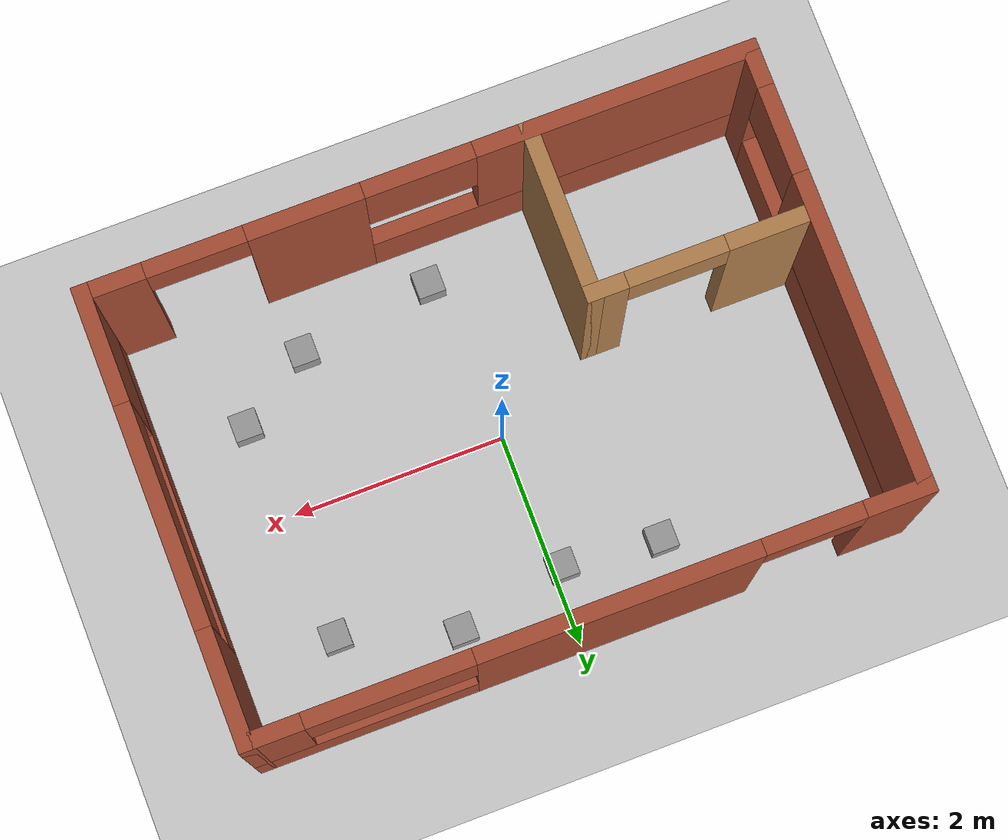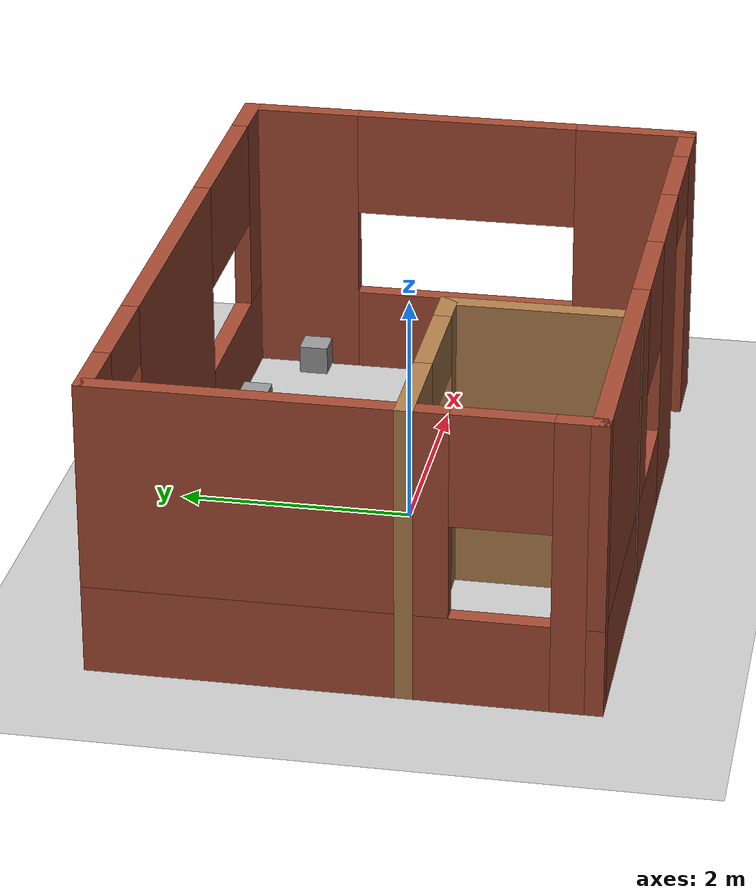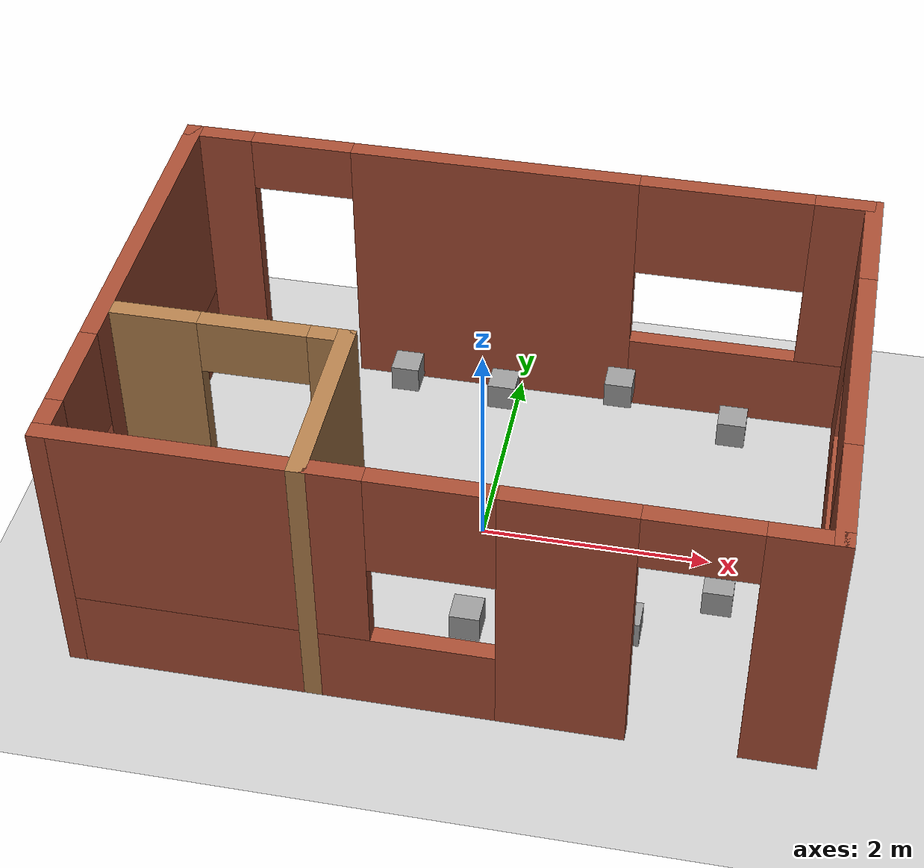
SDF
<sdf version="1.7">
 <world name="default">
  <light name="sun" type="directional">
   <pose>0 0 10 0 -0 0</pose>
   <diffuse>0.8 0.8 0.8 1</diffuse>
   <specular>0.2 0.2 0.2 1</specular>
   <attenuation>
    <range>1000</range>
    <constant>0.9</constant>
    <linear>0.01</linear>
    <quadratic>0.001</quadratic>
   </attenuation>
   <direction>-0.5 0.1 -0.9</direction>
   <spot><inner_angle>0</inner_angle><outer_angle>0</outer_angle><falloff>0</falloff></spot>
  </light>
  <model name="ground_plane">
   <static>1</static>
   <link name="link">
    <collision name="collision">
     <geometry><plane><normal>0 0 1</normal><size>100 100</size></plane></geometry>
     <surface>
      <contact><collide_bitmask>65535</collide_bitmask></contact>
      <friction><ode><mu>100</mu><mu2>50</mu2></ode></friction>
     </surface>
    </collision>
    <visual name="visual">
     <cast_shadows>0</cast_shadows>
     <geometry><plane><normal>0 0 1</normal><size>100 100</size></plane></geometry>
     <material>
      <script><uri>file://media/materials/scripts/gazebo.material</uri><name>Gazebo/Grey</name></script>
     </material>
    </visual>
   </link>
  </model>
  <gravity>0 0 -9.8</gravity>
  <magnetic_field>6e-06 2.3e-05 -4.2e-05</magnetic_field>
  <atmosphere type="adiabatic"/>
  <physics type="ode">
   <max_step_size>0.001</max_step_size>
   <real_time_factor>1</real_time_factor>
   <real_time_update_rate>1000</real_time_update_rate>
  </physics>
  <scene><ambient>0.4 0.4 0.4 1</ambient><background>0.7 0.7 0.7 1</background><shadows>1</shadows></scene>
  <audio><device>default</device></audio>
  <spherical_coordinates>
   <surface_model>EARTH_WGS84</surface_model>
   <latitude_deg>0</latitude_deg>
   <longitude_deg>0</longitude_deg>
   <elevation>0</elevation>
   <heading_deg>0</heading_deg>
  </spherical_coordinates>
  <model name="scara_world">
   <link name="Wall_0">
    <pose>0 2 0 0 -0 0</pose>
    <visual name="Wall_0_Visual_0">
     <pose>-2.7625 0 1.25 0 -0 0</pose>
     <geometry><box><size>0.625 0.15 2.5</size></box></geometry>
     <material>
      <script><uri>file://media/materials/scripts/gazebo.material</uri><name>Gazebo/Bricks</name></script>
      <ambient>1 1 1 1</ambient>
     </material>
     <meta><layer>0</layer></meta>
    </visual>
    <collision name="Wall_0_Collision_0">
     <geometry><box><size>0.625 0.15 2.5</size></box></geometry>
     <pose>-2.7625 0 1.25 0 -0 0</pose>
    </collision>
    <visual name="Wall_0_Visual_1">
     <pose>-0.275 0 1.25 0 -0 0</pose>
     <geometry><box><size>2.55 0.15 2.5</size></box></geometry>
     <material>
      <script><uri>file://media/materials/scripts/gazebo.material</uri><name>Gazebo/Bricks</name></script>
      <ambient>1 1 1 1</ambient>
     </material>
     <meta><layer>0</layer></meta>
    </visual>
    <collision name="Wall_0_Collision_1">
     <geometry><box><size>2.55 0.15 2.5</size></box></geometry>
     <pose>-0.275 0 1.25 0 -0 0</pose>
    </collision>
    <visual name="Wall_0_Visual_2">
     <pose>2.0375 0 0.375 0 -0 0</pose>
     <geometry><box><size>2.075 0.15 0.75</size></box></geometry>
     <material>
      <script><uri>file://media/materials/scripts/gazebo.material</uri><name>Gazebo/Bricks</name></script>
      <ambient>1 1 1 1</ambient>
     </material>
     <meta><layer>0</layer></meta>
    </visual>
    <collision name="Wall_0_Collision_2">
     <geometry><box><size>2.075 0.15 0.75</size></box></geometry>
     <pose>2.0375 0 0.375 0 -0 0</pose>
    </collision>
    <visual name="Wall_0_Visual_3">
     <pose>2.7875 0 1.625 0 -0 0</pose>
     <geometry><box><size>0.575 0.15 1.75</size></box></geometry>
     <material>
      <script><uri>file://media/materials/scripts/gazebo.material</uri><name>Gazebo/Bricks</name></script>
      <ambient>1 1 1 1</ambient>
     </material>
     <meta><layer>0</layer></meta>
    </visual>
    <collision name="Wall_0_Collision_3">
     <geometry><box><size>0.575 0.15 1.75</size></box></geometry>
     <pose>2.7875 0 1.625 0 -0 0</pose>
    </collision>
    <visual name="Wall_0_Visual_4">
     <pose>1.75 0 2.025 0 -0 0</pose>
     <geometry><box><size>1.5 0.15 0.95</size></box></geometry>
     <material>
      <script><uri>file://media/materials/scripts/gazebo.material</uri><name>Gazebo/Bricks</name></script>
      <ambient>1 1 1 1</ambient>
     </material>
     <meta><layer>0</layer></meta>
    </visual>
    <collision name="Wall_0_Collision_4">
     <geometry><box><size>1.5 0.15 0.95</size></box></geometry>
     <pose>1.75 0 2.025 0 -0 0</pose>
    </collision>
    <visual name="Wall_0_Visual_5">
     <pose>-2 0 2.25 0 -0 0</pose>
     <geometry><box><size>0.9 0.15 0.5</size></box></geometry>
     <material>
      <script><uri>file://media/materials/scripts/gazebo.material</uri><name>Gazebo/Bricks</name></script>
      <ambient>1 1 1 1</ambient>
     </material>
     <meta><layer>0</layer></meta>
    </visual>
    <collision name="Wall_0_Collision_5">
     <geometry><box><size>0.9 0.15 0.5</size></box></geometry>
     <pose>-2 0 2.25 0 -0 0</pose>
    </collision>
   </link>
   <link name="Wall_1">
    <pose>3 0 0 0 -0 -1.5708</pose>
    <visual name="Wall_1_Visual_0">
     <pose>-1.5375 0 1.25 0 -0 0</pose>
     <geometry><box><size>1.075 0.15 2.5</size></box></geometry>
     <material>
      <script><uri>file://media/materials/scripts/gazebo.material</uri><name>Gazebo/Bricks</name></script>
      <ambient>1 1 1 1</ambient>
     </material>
     <meta><layer>0</layer></meta>
    </visual>
    <collision name="Wall_1_Collision_0">
     <geometry><box><size>1.075 0.15 2.5</size></box></geometry>
     <pose>-1.5375 0 1.25 0 -0 0</pose>
    </collision>
    <visual name="Wall_1_Visual_1">
     <pose>0.5375 0 0.375 0 -0 0</pose>
     <geometry><box><size>3.075 0.15 0.75</size></box></geometry>
     <material>
      <script><uri>file://media/materials/scripts/gazebo.material</uri><name>Gazebo/Bricks</name></script>
      <ambient>1 1 1 1</ambient>
     </material>
     <meta><layer>0</layer></meta>
    </visual>
    <collision name="Wall_1_Collision_1">
     <geometry><box><size>3.075 0.15 0.75</size></box></geometry>
     <pose>0.5375 0 0.375 0 -0 0</pose>
    </collision>
    <visual name="Wall_1_Visual_2">
     <pose>1.5375 0 1.625 0 -0 0</pose>
     <geometry><box><size>1.075 0.15 1.75</size></box></geometry>
     <material>
      <script><uri>file://media/materials/scripts/gazebo.material</uri><name>Gazebo/Bricks</name></script>
      <ambient>1 1 1 1</ambient>
     </material>
     <meta><layer>0</layer></meta>
    </visual>
    <collision name="Wall_1_Collision_2">
     <geometry><box><size>1.075 0.15 1.75</size></box></geometry>
     <pose>1.5375 0 1.625 0 -0 0</pose>
    </collision>
    <visual name="Wall_1_Visual_3">
     <pose>0 0 2.025 0 -0 0</pose>
     <geometry><box><size>2 0.15 0.95</size></box></geometry>
     <material>
      <script><uri>file://media/materials/scripts/gazebo.material</uri><name>Gazebo/Bricks</name></script>
      <ambient>1 1 1 1</ambient>
     </material>
     <meta><layer>0</layer></meta>
    </visual>
    <collision name="Wall_1_Collision_3">
     <geometry><box><size>2 0.15 0.95</size></box></geometry>
     <pose>0 0 2.025 0 -0 0</pose>
    </collision>
   </link>
   <link name="Wall_2">
    <pose>0 -2 0 0 -0 3.14159</pose>
    <visual name="Wall_2_Visual_0">
     <pose>-2.7625 0 1.25 0 -0 0</pose>
     <geometry><box><size>0.625 0.15 2.5</size></box></geometry>
     <material>
      <script><uri>file://media/materials/scripts/gazebo.material</uri><name>Gazebo/Bricks</name></script>
      <ambient>1 1 1 1</ambient>
     </material>
     <meta><layer>0</layer></meta>
    </visual>
    <collision name="Wall_2_Collision_0">
     <geometry><box><size>0.625 0.15 2.5</size></box></geometry>
     <pose>-2.7625 0 1.25 0 -0 0</pose>
    </collision>
    <visual name="Wall_2_Visual_1">
     <pose>-1.025 0 1.25 0 -0 0</pose>
     <geometry><box><size>1.05 0.15 2.5</size></box></geometry>
     <material>
      <script><uri>file://media/materials/scripts/gazebo.material</uri><name>Gazebo/Bricks</name></script>
      <ambient>1 1 1 1</ambient>
     </material>
     <meta><layer>0</layer></meta>
    </visual>
    <collision name="Wall_2_Collision_1">
     <geometry><box><size>1.05 0.15 2.5</size></box></geometry>
     <pose>-1.025 0 1.25 0 -0 0</pose>
    </collision>
    <visual name="Wall_2_Visual_2">
     <pose>1.2875 0 0.375 0 -0 0</pose>
     <geometry><box><size>3.575 0.15 0.75</size></box></geometry>
     <material>
      <script><uri>file://media/materials/scripts/gazebo.material</uri><name>Gazebo/Bricks</name></script>
      <ambient>1 1 1 1</ambient>
     </material>
     <meta><layer>0</layer></meta>
    </visual>
    <collision name="Wall_2_Collision_2">
     <geometry><box><size>3.575 0.15 0.75</size></box></geometry>
     <pose>1.2875 0 0.375 0 -0 0</pose>
    </collision>
    <visual name="Wall_2_Visual_3">
     <pose>1.7875 0 1.625 0 -0 0</pose>
     <geometry><box><size>2.575 0.15 1.75</size></box></geometry>
     <material>
      <script><uri>file://media/materials/scripts/gazebo.material</uri><name>Gazebo/Bricks</name></script>
      <ambient>1 1 1 1</ambient>
     </material>
     <meta><layer>0</layer></meta>
    </visual>
    <collision name="Wall_2_Collision_3">
     <geometry><box><size>2.575 0.15 1.75</size></box></geometry>
     <pose>1.7875 0 1.625 0 -0 0</pose>
    </collision>
    <visual name="Wall_2_Visual_4">
     <pose>0 0 2.025 0 -0 0</pose>
     <geometry><box><size>1 0.15 0.95</size></box></geometry>
     <material>
      <script><uri>file://media/materials/scripts/gazebo.material</uri><name>Gazebo/Bricks</name></script>
      <ambient>1 1 1 1</ambient>
     </material>
     <meta><layer>0</layer></meta>
    </visual>
    <collision name="Wall_2_Collision_4">
     <geometry><box><size>1 0.15 0.95</size></box></geometry>
     <pose>0 0 2.025 0 -0 0</pose>
    </collision>
    <visual name="Wall_2_Visual_5">
     <pose>-2 0 2.25 0 -0 0</pose>
     <geometry><box><size>0.9 0.15 0.5</size></box></geometry>
     <material>
      <script><uri>file://media/materials/scripts/gazebo.material</uri><name>Gazebo/Bricks</name></script>
      <ambient>1 1 1 1</ambient>
     </material>
     <meta><layer>0</layer></meta>
    </visual>
    <collision name="Wall_2_Collision_5">
     <geometry><box><size>0.9 0.15 0.5</size></box></geometry>
     <pose>-2 0 2.25 0 -0 0</pose>
    </collision>
   </link>
   <link name="Wall_3">
    <pose>-3 0 0 0 -0 1.5708</pose>
    <visual name="Wall_3_Visual_0">
     <pose>-1.8625 0 1.25 0 -0 0</pose>
     <geometry><box><size>0.425 0.15 2.5</size></box></geometry>
     <material>
      <script><uri>file://media/materials/scripts/gazebo.material</uri><name>Gazebo/Bricks</name></script>
      <ambient>1 1 1 1</ambient>
     </material>
     <meta><layer>0</layer></meta>
    </visual>
    <collision name="Wall_3_Collision_0">
     <geometry><box><size>0.425 0.15 2.5</size></box></geometry>
     <pose>-1.8625 0 1.25 0 -0 0</pose>
    </collision>
    <visual name="Wall_3_Visual_1">
     <pose>0.2125 0 0.375 0 -0 0</pose>
     <geometry><box><size>3.725 0.15 0.75</size></box></geometry>
     <material>
      <script><uri>file://media/materials/scripts/gazebo.material</uri><name>Gazebo/Bricks</name></script>
      <ambient>1 1 1 1</ambient>
     </material>
     <meta><layer>0</layer></meta>
    </visual>
    <collision name="Wall_3_Collision_1">
     <geometry><box><size>3.725 0.15 0.75</size></box></geometry>
     <pose>0.2125 0 0.375 0 -0 0</pose>
    </collision>
    <visual name="Wall_3_Visual_2">
     <pose>0.6125 0 1.625 0 -0 0</pose>
     <geometry><box><size>2.925 0.15 1.75</size></box></geometry>
     <material>
      <script><uri>file://media/materials/scripts/gazebo.material</uri><name>Gazebo/Bricks</name></script>
      <ambient>1 1 1 1</ambient>
     </material>
     <meta><layer>0</layer></meta>
    </visual>
    <collision name="Wall_3_Collision_2">
     <geometry><box><size>2.925 0.15 1.75</size></box></geometry>
     <pose>0.6125 0 1.625 0 -0 0</pose>
    </collision>
    <visual name="Wall_3_Visual_3">
     <pose>-1.25 0 2.025 0 -0 0</pose>
     <geometry><box><size>0.8 0.15 0.95</size></box></geometry>
     <material>
      <script><uri>file://media/materials/scripts/gazebo.material</uri><name>Gazebo/Bricks</name></script>
      <ambient>1 1 1 1</ambient>
     </material>
     <meta><layer>0</layer></meta>
    </visual>
    <collision name="Wall_3_Collision_3">
     <geometry><box><size>0.8 0.15 0.95</size></box></geometry>
     <pose>-1.25 0 2.025 0 -0 0</pose>
    </collision>
   </link>
   <link name="Wall_5">
    <pose>-2 -0.5 0 0 -0 0</pose>
    <visual name="Wall_5_Visual_0">
     <pose>-0.6375 0 1.25 0 -0 0</pose>
     <geometry><box><size>0.875 0.15 2.5</size></box></geometry>
     <material>
      <script><uri>file://media/materials/scripts/gazebo.material</uri><name>Gazebo/Wood</name></script>
      <ambient>1 1 1 1</ambient>
     </material>
     <meta><layer>0</layer></meta>
    </visual>
    <collision name="Wall_5_Collision_0">
     <geometry><box><size>0.875 0.15 2.5</size></box></geometry>
     <pose>-0.6375 0 1.25 0 -0 0</pose>
    </collision>
    <visual name="Wall_5_Visual_1">
     <pose>0.8875 0 1.25 0 -0 0</pose>
     <geometry><box><size>0.375 0.15 2.5</size></box></geometry>
     <material>
      <script><uri>file://media/materials/scripts/gazebo.material</uri><name>Gazebo/Wood</name></script>
      <ambient>1 1 1 1</ambient>
     </material>
     <meta><layer>0</layer></meta>
    </visual>
    <collision name="Wall_5_Collision_1">
     <geometry><box><size>0.375 0.15 2.5</size></box></geometry>
     <pose>0.8875 0 1.25 0 -0 0</pose>
    </collision>
    <visual name="Wall_5_Visual_2">
     <pose>0.25 0 2.25 0 -0 0</pose>
     <geometry><box><size>0.9 0.15 0.5</size></box></geometry>
     <material>
      <script><uri>file://media/materials/scripts/gazebo.material</uri><name>Gazebo/Wood</name></script>
      <ambient>1 1 1 1</ambient>
     </material>
     <meta><layer>0</layer></meta>
    </visual>
    <collision name="Wall_5_Collision_2">
     <geometry><box><size>0.9 0.15 0.5</size></box></geometry>
     <pose>0.25 0 2.25 0 -0 0</pose>
    </collision>
   </link>
   <link name="Wall_6">
    <collision name="Wall_6_Collision">
     <geometry><box><size>1.65 0.15 2.5</size></box></geometry>
     <pose>0 0 1.25 0 -0 0</pose>
    </collision>
    <visual name="Wall_6_Visual">
     <pose>0 0 1.25 0 -0 0</pose>
     <geometry><box><size>1.65 0.15 2.5</size></box></geometry>
     <material>
      <script><uri>file://media/materials/scripts/gazebo.material</uri><name>Gazebo/Wood</name></script>
      <ambient>1 1 1 1</ambient>
     </material>
     <meta><layer>0</layer></meta>
    </visual>
    <pose>-1 -1.25 0 0 -0 -1.5708</pose>
   </link>
   <static>1</static>
  </model>
  <model name="unit_box">
   <link name="link">
    <inertial>
     <mass>1</mass>
     <inertia>
      <ixx>0.166667</ixx>
      <ixy>0</ixy>
      <ixz>0</ixz>
      <iyy>0.166667</iyy>
      <iyz>0</iyz>
      <izz>0.166667</izz>
     </inertia>
    </inertial>
    <visual name="visual">
     <geometry><box><size>0.25 0.25 0.25</size></box></geometry>
     <material>
      <script><name>Gazebo/Grey</name><uri>file://media/materials/scripts/gazebo.material</uri></script>
      <shader type="pixel"><normal_map>__default__</normal_map></shader>
      <ambient>0.3 0.3 0.3 1</ambient>
      <diffuse>0.7 0.7 0.7 1</diffuse>
      <specular>0.01 0.01 0.01 1</specular>
      <emissive>0 0 0 1</emissive>
     </material>
    </visual>
    <collision name="collision">
     <geometry><box><size>0.25 0.25 0.25</size></box></geometry>
     <surface>
      <friction>
       <ode><mu>1</mu><mu2>1</mu2><fdir1>0 0 0</fdir1><slip1>0</slip1><slip2>0</slip2></ode>
       <torsional>
        <coefficient>1</coefficient>
        <patch_radius>0</patch_radius>
        <surface_radius>0</surface_radius>
        <use_patch_radius>1</use_patch_radius>
        <ode><slip>0</slip></ode>
       </torsional>
      </friction>
      <bounce><restitution_coefficient>0</restitution_coefficient><threshold>1e+06</threshold></bounce>
      <contact>
       <collide_without_contact>0</collide_without_contact>
       <collide_without_contact_bitmask>1</collide_without_contact_bitmask>
       <collide_bitmask>1</collide_bitmask>
       <ode>
        <soft_cfm>0</soft_cfm>
        <soft_erp>0.2</soft_erp>
        <kp>1e+13</kp>
        <kd>1</kd>
        <max_vel>0.01</max_vel>
        <min_depth>0</min_depth>
       </ode>
       <bullet>
        <split_impulse>1</split_impulse>
        <split_impulse_penetration_threshold>-0.01</split_impulse_penetration_threshold>
        <soft_cfm>0</soft_cfm>
        <soft_erp>0.2</soft_erp>
        <kp>1e+13</kp>
        <kd>1</kd>
       </bullet>
      </contact>
     </surface>
    </collision>
   </link>
   <link name="link_clone">
    <inertial>
     <mass>1</mass>
     <inertia>
      <ixx>0.166667</ixx>
      <ixy>0</ixy>
      <ixz>0</ixz>
      <iyy>0.166667</iyy>
      <iyz>0</iyz>
      <izz>0.166667</izz>
     </inertia>
    </inertial>
    <pose>0.098467 -2.04443 -2e-05 1e-05 -0 0</pose>
    <visual name="visual">
     <geometry><box><size>0.25 0.25 0.25</size></box></geometry>
     <material>
      <script><name>Gazebo/Grey</name><uri>file://media/materials/scripts/gazebo.material</uri></script>
      <shader type="pixel"><normal_map>__default__</normal_map></shader>
      <ambient>0.3 0.3 0.3 1</ambient>
      <diffuse>0.7 0.7 0.7 1</diffuse>
      <specular>0.01 0.01 0.01 1</specular>
      <emissive>0 0 0 1</emissive>
     </material>
    </visual>
    <collision name="collision">
     <geometry><box><size>0.25 0.25 0.25</size></box></geometry>
     <surface>
      <friction>
       <ode><mu>1</mu><mu2>1</mu2><fdir1>0 0 0</fdir1><slip1>0</slip1><slip2>0</slip2></ode>
       <torsional>
        <coefficient>1</coefficient>
        <patch_radius>0</patch_radius>
        <surface_radius>0</surface_radius>
        <use_patch_radius>1</use_patch_radius>
        <ode><slip>0</slip></ode>
       </torsional>
      </friction>
      <bounce><restitution_coefficient>0</restitution_coefficient><threshold>1e+06</threshold></bounce>
      <contact>
       <collide_without_contact>0</collide_without_contact>
       <collide_without_contact_bitmask>1</collide_without_contact_bitmask>
       <collide_bitmask>1</collide_bitmask>
       <ode>
        <soft_cfm>0</soft_cfm>
        <soft_erp>0.2</soft_erp>
        <kp>1e+13</kp>
        <kd>1</kd>
        <max_vel>0.01</max_vel>
        <min_depth>0</min_depth>
       </ode>
       <bullet>
        <split_impulse>1</split_impulse>
        <split_impulse_penetration_threshold>-0.01</split_impulse_penetration_threshold>
        <soft_cfm>0</soft_cfm>
        <soft_erp>0.2</soft_erp>
        <kp>1e+13</kp>
        <kd>1</kd>
       </bullet>
      </contact>
     </surface>
    </collision>
   </link>
   <link name="link_clone_0">
    <inertial>
     <mass>1</mass>
     <inertia>
      <ixx>0.166667</ixx>
      <ixy>0</ixy>
      <ixz>0</ixz>
      <iyy>0.166667</iyy>
      <iyz>0</iyz>
      <izz>0.166667</izz>
     </inertia>
    </inertial>
    <pose>-1.05809 0.335206 3e-06 1e-05 -0 0</pose>
    <visual name="visual">
     <geometry><box><size>0.25 0.25 0.25</size></box></geometry>
     <material>
      <script><name>Gazebo/Grey</name><uri>file://media/materials/scripts/gazebo.material</uri></script>
      <shader type="pixel"><normal_map>__default__</normal_map></shader>
      <ambient>0.3 0.3 0.3 1</ambient>
      <diffuse>0.7 0.7 0.7 1</diffuse>
      <specular>0.01 0.01 0.01 1</specular>
      <emissive>0 0 0 1</emissive>
     </material>
    </visual>
    <collision name="collision">
     <geometry><box><size>0.25 0.25 0.25</size></box></geometry>
     <surface>
      <friction>
       <ode><mu>1</mu><mu2>1</mu2><fdir1>0 0 0</fdir1><slip1>0</slip1><slip2>0</slip2></ode>
       <torsional>
        <coefficient>1</coefficient>
        <patch_radius>0</patch_radius>
        <surface_radius>0</surface_radius>
        <use_patch_radius>1</use_patch_radius>
        <ode><slip>0</slip></ode>
       </torsional>
      </friction>
      <bounce><restitution_coefficient>0</restitution_coefficient><threshold>1e+06</threshold></bounce>
      <contact>
       <collide_without_contact>0</collide_without_contact>
       <collide_without_contact_bitmask>1</collide_without_contact_bitmask>
       <collide_bitmask>1</collide_bitmask>
       <ode>
        <soft_cfm>0</soft_cfm>
        <soft_erp>0.2</soft_erp>
        <kp>1e+13</kp>
        <kd>1</kd>
        <max_vel>0.01</max_vel>
        <min_depth>0</min_depth>
       </ode>
       <bullet>
        <split_impulse>1</split_impulse>
        <split_impulse_penetration_threshold>-0.01</split_impulse_penetration_threshold>
        <soft_cfm>0</soft_cfm>
        <soft_erp>0.2</soft_erp>
        <kp>1e+13</kp>
        <kd>1</kd>
       </bullet>
      </contact>
     </surface>
    </collision>
   </link>
   <link name="link_clone_1">
    <inertial>
     <mass>1</mass>
     <inertia>
      <ixx>0.166667</ixx>
      <ixy>0</ixy>
      <ixz>0</ixz>
      <iyy>0.166667</iyy>
      <iyz>0</iyz>
      <izz>0.166667</izz>
     </inertia>
    </inertial>
    <pose>-2.99875 0.194392 2e-06 1e-05 -0 0</pose>
    <visual name="visual">
     <geometry><box><size>0.25 0.25 0.25</size></box></geometry>
     <material>
      <script><name>Gazebo/Grey</name><uri>file://media/materials/scripts/gazebo.material</uri></script>
      <shader type="pixel"><normal_map>__default__</normal_map></shader>
      <ambient>0.3 0.3 0.3 1</ambient>
      <diffuse>0.7 0.7 0.7 1</diffuse>
      <specular>0.01 0.01 0.01 1</specular>
      <emissive>0 0 0 1</emissive>
     </material>
    </visual>
    <collision name="collision">
     <geometry><box><size>0.25 0.25 0.25</size></box></geometry>
     <surface>
      <friction>
       <ode><mu>1</mu><mu2>1</mu2><fdir1>0 0 0</fdir1><slip1>0</slip1><slip2>0</slip2></ode>
       <torsional>
        <coefficient>1</coefficient>
        <patch_radius>0</patch_radius>
        <surface_radius>0</surface_radius>
        <use_patch_radius>1</use_patch_radius>
        <ode><slip>0</slip></ode>
       </torsional>
      </friction>
      <bounce><restitution_coefficient>0</restitution_coefficient><threshold>1e+06</threshold></bounce>
      <contact>
       <collide_without_contact>0</collide_without_contact>
       <collide_without_contact_bitmask>1</collide_without_contact_bitmask>
       <collide_bitmask>1</collide_bitmask>
       <ode>
        <soft_cfm>0</soft_cfm>
        <soft_erp>0.2</soft_erp>
        <kp>1e+13</kp>
        <kd>1</kd>
        <max_vel>0.01</max_vel>
        <min_depth>0</min_depth>
       </ode>
       <bullet>
        <split_impulse>1</split_impulse>
        <split_impulse_penetration_threshold>-0.01</split_impulse_penetration_threshold>
        <soft_cfm>0</soft_cfm>
        <soft_erp>0.2</soft_erp>
        <kp>1e+13</kp>
        <kd>1</kd>
       </bullet>
      </contact>
     </surface>
    </collision>
   </link>
   <link name="link_clone_2">
    <inertial>
     <mass>1</mass>
     <inertia>
      <ixx>0.166667</ixx>
      <ixy>0</ixy>
      <ixz>0</ixz>
      <iyy>0.166667</iyy>
      <iyz>0</iyz>
      <izz>0.166667</izz>
     </inertia>
    </inertial>
    <pose>-1.87416 -2.69041 -2.6e-05 1e-05 -0 0</pose>
    <visual name="visual">
     <geometry><box><size>0.25 0.25 0.25</size></box></geometry>
     <material>
      <script><name>Gazebo/Grey</name><uri>file://media/materials/scripts/gazebo.material</uri></script>
      <shader type="pixel"><normal_map>__default__</normal_map></shader>
      <ambient>0.3 0.3 0.3 1</ambient>
      <diffuse>0.7 0.7 0.7 1</diffuse>
      <specular>0.01 0.01 0.01 1</specular>
      <emissive>0 0 0 1</emissive>
     </material>
    </visual>
    <collision name="collision">
     <geometry><box><size>0.25 0.25 0.25</size></box></geometry>
     <surface>
      <friction>
       <ode><mu>1</mu><mu2>1</mu2><fdir1>0 0 0</fdir1><slip1>0</slip1><slip2>0</slip2></ode>
       <torsional>
        <coefficient>1</coefficient>
        <patch_radius>0</patch_radius>
        <surface_radius>0</surface_radius>
        <use_patch_radius>1</use_patch_radius>
        <ode><slip>0</slip></ode>
       </torsional>
      </friction>
      <bounce><restitution_coefficient>0</restitution_coefficient><threshold>1e+06</threshold></bounce>
      <contact>
       <collide_without_contact>0</collide_without_contact>
       <collide_without_contact_bitmask>1</collide_without_contact_bitmask>
       <collide_bitmask>1</collide_bitmask>
       <ode>
        <soft_cfm>0</soft_cfm>
        <soft_erp>0.2</soft_erp>
        <kp>1e+13</kp>
        <kd>1</kd>
        <max_vel>0.01</max_vel>
        <min_depth>0</min_depth>
       </ode>
       <bullet>
        <split_impulse>1</split_impulse>
        <split_impulse_penetration_threshold>-0.01</split_impulse_penetration_threshold>
        <soft_cfm>0</soft_cfm>
        <soft_erp>0.2</soft_erp>
        <kp>1e+13</kp>
        <kd>1</kd>
       </bullet>
      </contact>
     </surface>
    </collision>
   </link>
   <link name="link_clone_3">
    <inertial>
     <mass>1</mass>
     <inertia>
      <ixx>0.166667</ixx>
      <ixy>0</ixy>
      <ixz>0</ixz>
      <iyy>0.166667</iyy>
      <iyz>0</iyz>
      <izz>0.166667</izz>
     </inertia>
    </inertial>
    <pose>-0.601496 -2.50113 -2.4e-05 1e-05 -0 0</pose>
    <visual name="visual">
     <geometry><box><size>0.25 0.25 0.25</size></box></geometry>
     <material>
      <script><name>Gazebo/Grey</name><uri>file://media/materials/scripts/gazebo.material</uri></script>
      <shader type="pixel"><normal_map>__default__</normal_map></shader>
      <ambient>0.3 0.3 0.3 1</ambient>
      <diffuse>0.7 0.7 0.7 1</diffuse>
      <specular>0.01 0.01 0.01 1</specular>
      <emissive>0 0 0 1</emissive>
     </material>
    </visual>
    <collision name="collision">
     <geometry><box><size>0.25 0.25 0.25</size></box></geometry>
     <surface>
      <friction>
       <ode><mu>1</mu><mu2>1</mu2><fdir1>0 0 0</fdir1><slip1>0</slip1><slip2>0</slip2></ode>
       <torsional>
        <coefficient>1</coefficient>
        <patch_radius>0</patch_radius>
        <surface_radius>0</surface_radius>
        <use_patch_radius>1</use_patch_radius>
        <ode><slip>0</slip></ode>
       </torsional>
      </friction>
      <bounce><restitution_coefficient>0</restitution_coefficient><threshold>1e+06</threshold></bounce>
      <contact>
       <collide_without_contact>0</collide_without_contact>
       <collide_without_contact_bitmask>1</collide_without_contact_bitmask>
       <collide_bitmask>1</collide_bitmask>
       <ode>
        <soft_cfm>0</soft_cfm>
        <soft_erp>0.2</soft_erp>
        <kp>1e+13</kp>
        <kd>1</kd>
        <max_vel>0.01</max_vel>
        <min_depth>0</min_depth>
       </ode>
       <bullet>
        <split_impulse>1</split_impulse>
        <split_impulse_penetration_threshold>-0.01</split_impulse_penetration_threshold>
        <soft_cfm>0</soft_cfm>
        <soft_erp>0.2</soft_erp>
        <kp>1e+13</kp>
        <kd>1</kd>
       </bullet>
      </contact>
     </surface>
    </collision>
   </link>
   <link name="link_clone_4">
    <inertial>
     <mass>1</mass>
     <inertia>
      <ixx>0.166667</ixx>
      <ixy>0</ixy>
      <ixz>0</ixz>
      <iyy>0.166667</iyy>
      <iyz>0</iyz>
      <izz>0.166667</izz>
     </inertia>
    </inertial>
    <pose>-2.08967 0.112713 1e-06 1e-05 -0 0</pose>
    <visual name="visual">
     <geometry><box><size>0.25 0.25 0.25</size></box></geometry>
     <material>
      <script><name>Gazebo/Grey</name><uri>file://media/materials/scripts/gazebo.material</uri></script>
      <shader type="pixel"><normal_map>__default__</normal_map></shader>
      <ambient>0.3 0.3 0.3 1</ambient>
      <diffuse>0.7 0.7 0.7 1</diffuse>
      <specular>0.01 0.01 0.01 1</specular>
      <emissive>0 0 0 1</emissive>
     </material>
    </visual>
    <collision name="collision">
     <geometry><box><size>0.25 0.25 0.25</size></box></geometry>
     <surface>
      <friction>
       <ode><mu>1</mu><mu2>1</mu2><fdir1>0 0 0</fdir1><slip1>0</slip1><slip2>0</slip2></ode>
       <torsional>
        <coefficient>1</coefficient>
        <patch_radius>0</patch_radius>
        <surface_radius>0</surface_radius>
        <use_patch_radius>1</use_patch_radius>
        <ode><slip>0</slip></ode>
       </torsional>
      </friction>
      <bounce><restitution_coefficient>0</restitution_coefficient><threshold>1e+06</threshold></bounce>
      <contact>
       <collide_without_contact>0</collide_without_contact>
       <collide_without_contact_bitmask>1</collide_without_contact_bitmask>
       <collide_bitmask>1</collide_bitmask>
       <ode>
        <soft_cfm>0</soft_cfm>
        <soft_erp>0.2</soft_erp>
        <kp>1e+13</kp>
        <kd>1</kd>
        <max_vel>0.01</max_vel>
        <min_depth>0</min_depth>
       </ode>
       <bullet>
        <split_impulse>1</split_impulse>
        <split_impulse_penetration_threshold>-0.01</split_impulse_penetration_threshold>
        <soft_cfm>0</soft_cfm>
        <soft_erp>0.2</soft_erp>
        <kp>1e+13</kp>
        <kd>1</kd>
       </bullet>
      </contact>
     </surface>
    </collision>
   </link>
   <static>0</static>
   <pose>2.02954 1.22222 0.499995 -1e-05 0 0</pose>
  </model>
 </world>
</sdf>
